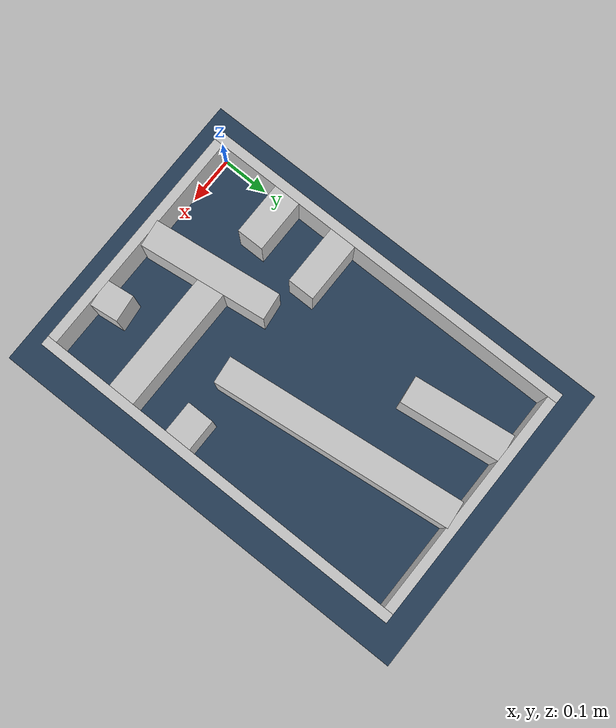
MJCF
<?xml version="1.0" ?>
<mujoco model="generated_real_template">
  <compiler angle="degree"/>
  <option timestep="0.002" integrator="implicitfast" iterations="100" cone="elliptic"/>
  <default>
    <geom density="1"/>
  </default>
  <asset>
    <texture builtin="gradient" height="3072" rgb1="0.3 0.5 0.7" rgb2="0 0 0" type="skybox" width="512"/>
    <texture builtin="checker" height="300" mark="edge" markrgb="0.8 0.8 0.8" name="groundplane" rgb1="0.2 0.3 0.4" rgb2="0.1 0.2 0.3" type="2d" width="300"/>
    <material name="groundplane" reflectance="0.2" texrepeat="5 5" texture="groundplane" texuniform="true"/>
  </asset>
  <worldbody>
    <light dir="0 0 -1" directional="true" pos="0 0 1.5"/>
    <geom name="floor" type="plane" condim="4" friction="0.5 0.005 0.001" material="groundplane" size="0 0 0.05"/>
    <body name="walls">
      <geom name="wall_boundary_left" type="box" condim="4" friction="1.0 0.005 0.0001" rgba="0.8 0.8 0.8 1" pos="-0.010000 0.387500 0.050000" euler="0 0 0.000000" size="0.010000 0.407500 0.050000"/>
      <geom name="wall_boundary_right" type="box" condim="4" friction="1.0 0.005 0.0001" rgba="0.8 0.8 0.8 1" pos="0.500000 0.387500 0.050000" euler="0 0 0.000000" size="0.010000 0.407500 0.050000"/>
      <geom name="wall_boundary_bottom" type="box" condim="4" friction="1.0 0.005 0.0001" rgba="0.8 0.8 0.8 1" pos="0.245000 -0.010000 0.050000" euler="0 0 0.000000" size="0.245000 0.010000 0.050000"/>
      <geom name="wall_boundary_top" type="box" condim="4" friction="1.0 0.005 0.0001" rgba="0.8 0.8 0.8 1" pos="0.245000 0.785000 0.050000" euler="0 0 0.000000" size="0.245000 0.010000 0.050000"/>
      <geom name="wall_inner_1_1" type="box" condim="4" friction="1.0 0.005 0.0001" rgba="0.8 0.8 0.8 1" pos="0.056145 0.157335 0.050000" euler="0 0 0.000000" size="0.056145 0.028500 0.050000"/>
      <geom name="wall_inner_1_2" type="box" condim="4" friction="1.0 0.005 0.0001" rgba="0.8 0.8 0.8 1" pos="0.349436 0.157335 0.050000" euler="0 0 0.000000" size="0.140564 0.028500 0.050000"/>
      <geom name="wall_inner_2_1" type="box" condim="4" friction="1.0 0.005 0.0001" rgba="0.8 0.8 0.8 1" pos="0.137368 0.669890 0.050000" euler="0 0 -82.929030" size="0.105915 0.028500 0.050000"/>
      <geom name="wall_inner_2_2" type="box" condim="4" friction="1.0 0.005 0.0001" rgba="0.8 0.8 0.8 1" pos="0.203717 0.135003 0.050000" euler="0 0 -82.929030" size="0.136038 0.028500 0.050000"/>
      <geom name="wall_inner_3_1" type="box" condim="4" friction="1.0 0.005 0.0001" rgba="0.8 0.8 0.8 1" pos="0.307926 0.523859 0.050000" euler="0 0 -83.484880" size="0.252774 0.028500 0.050000"/>
      <geom name="wall_inner_3_2" type="box" condim="4" friction="1.0 0.005 0.0001" rgba="0.8 0.8 0.8 1" pos="0.364413 0.029241 0.050000" euler="0 0 -83.484880" size="0.029431 0.028500 0.050000"/>
      <geom name="wall_inner_4_1" type="box" condim="4" friction="1.0 0.005 0.0001" rgba="0.8 0.8 0.8 1" pos="0.063676 0.292185 0.050000" euler="0 0 0.000000" size="0.063676 0.028500 0.050000"/>
      <geom name="wall_inner_4_2" type="box" condim="4" friction="1.0 0.005 0.0001" rgba="0.8 0.8 0.8 1" pos="0.456313 0.292185 0.050000" euler="0 0 0.000000" size="0.033687 0.028500 0.050000"/>
    </body>
  </worldbody>
</mujoco>
